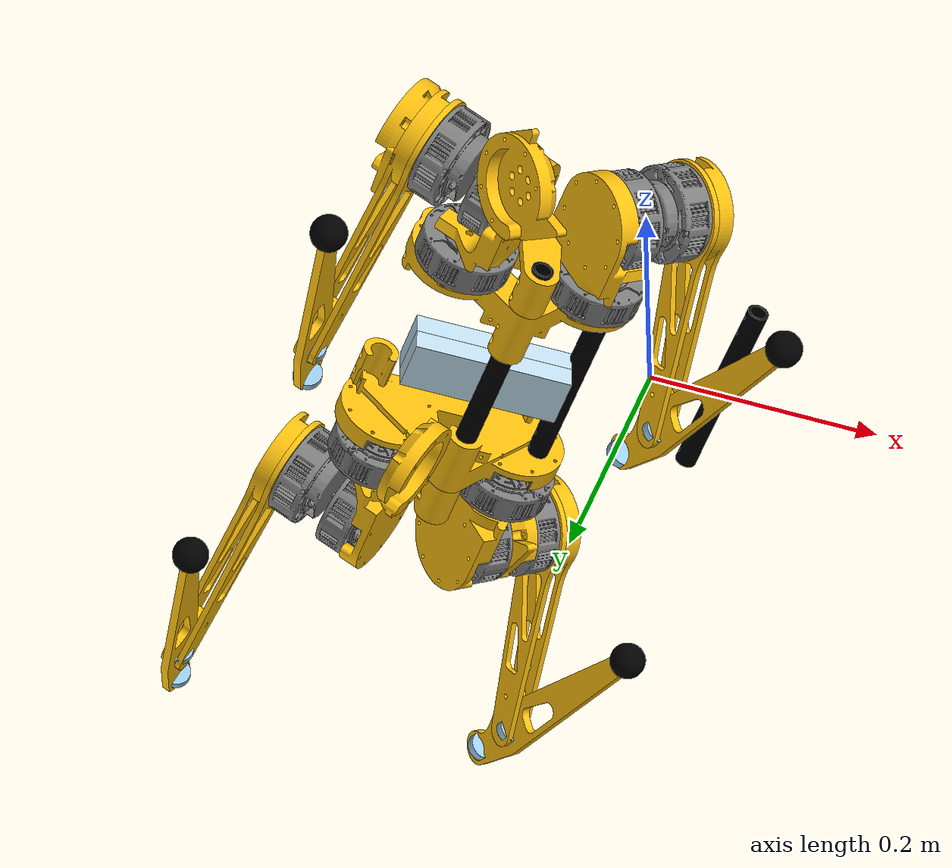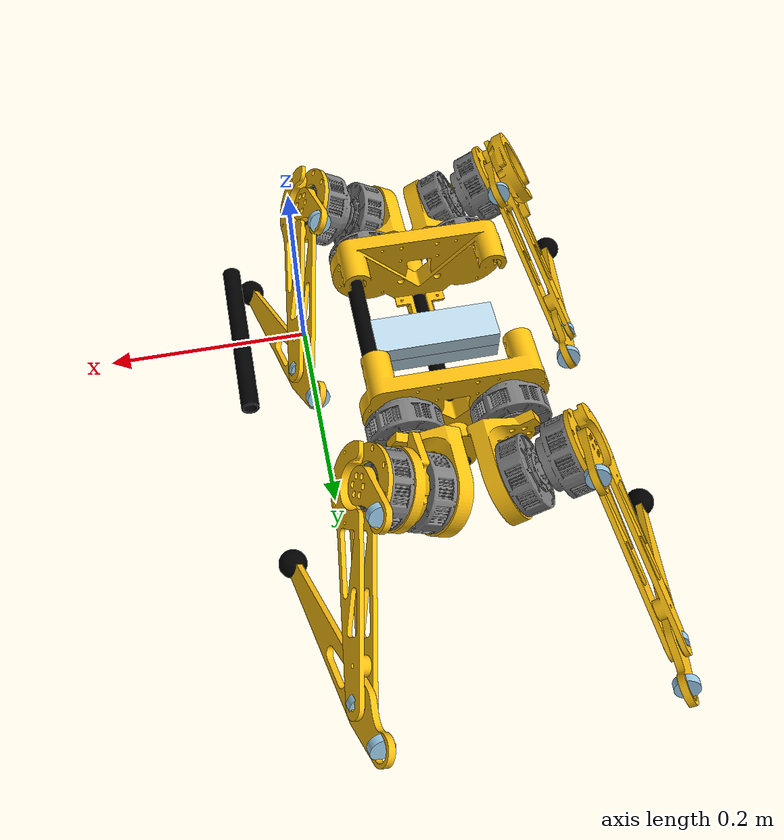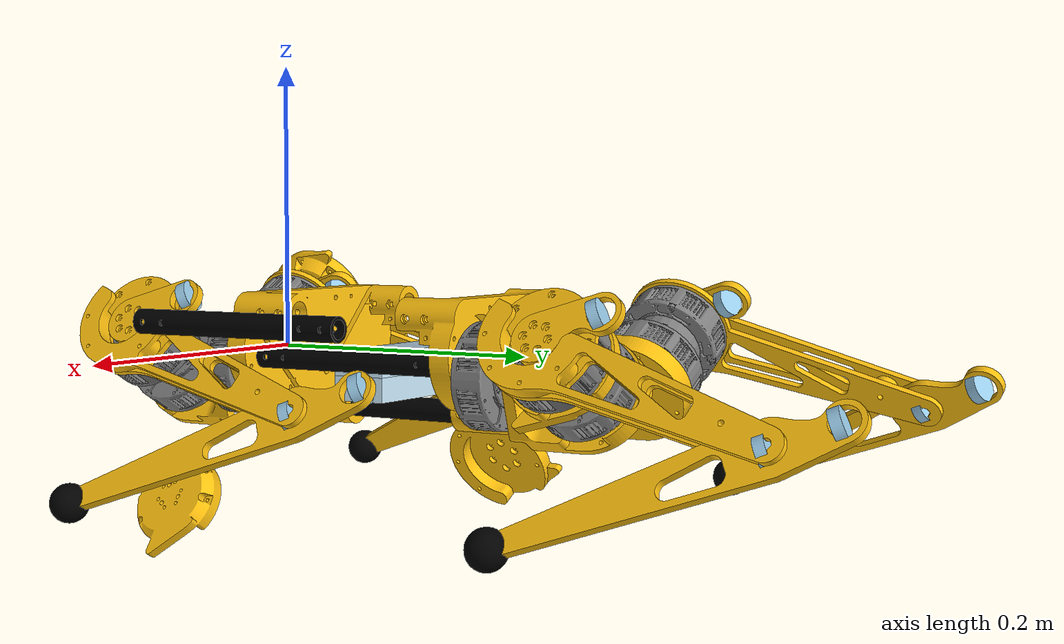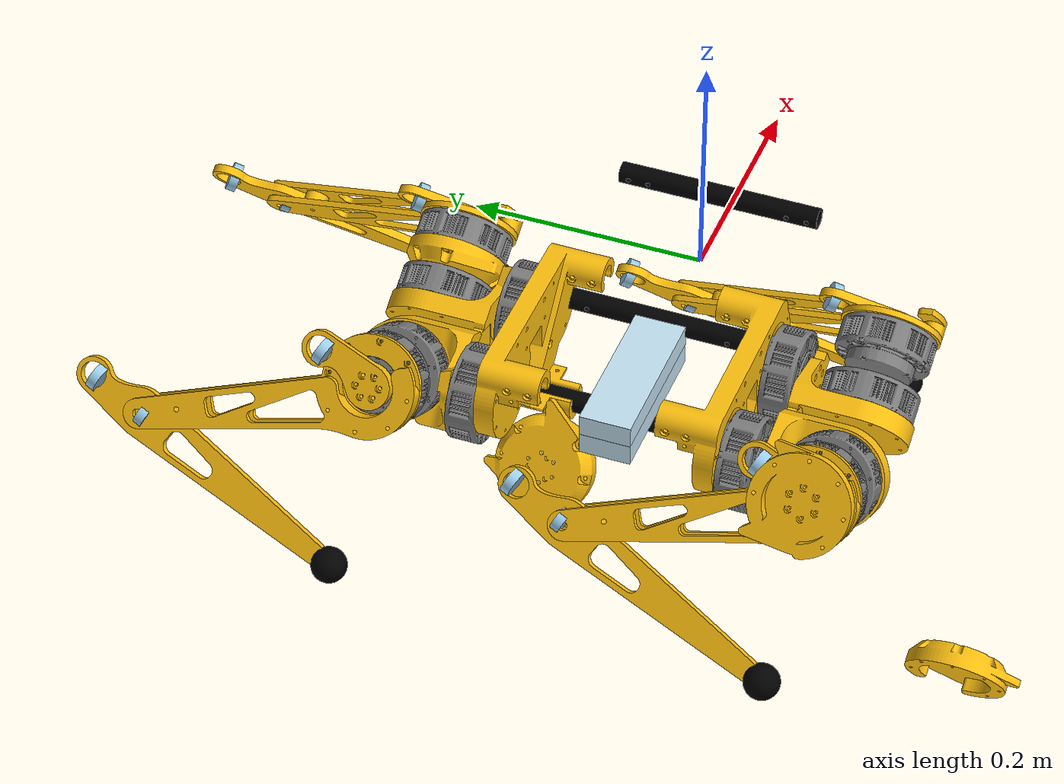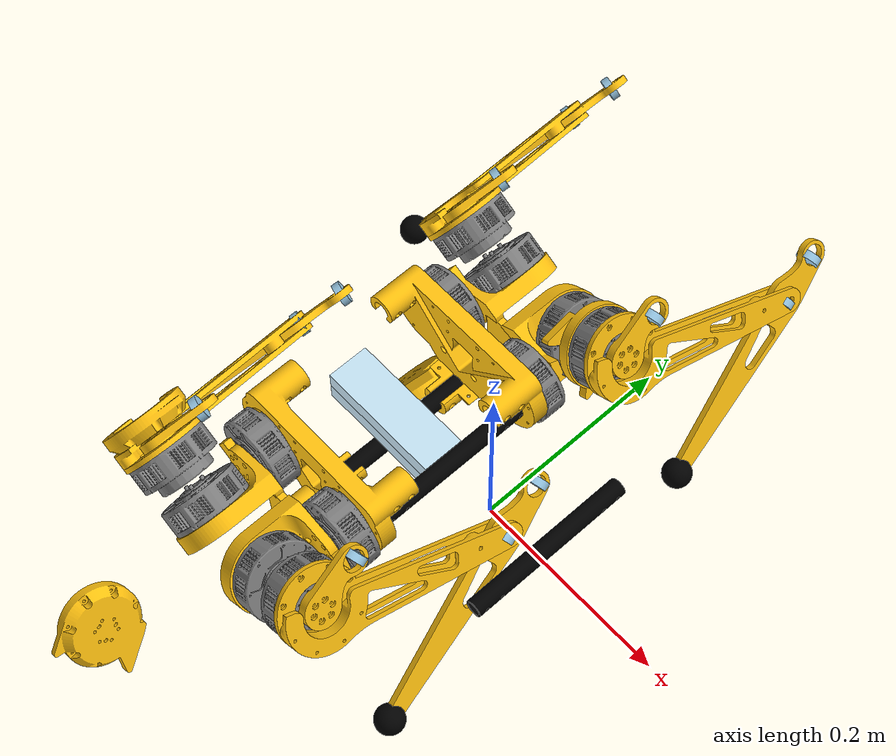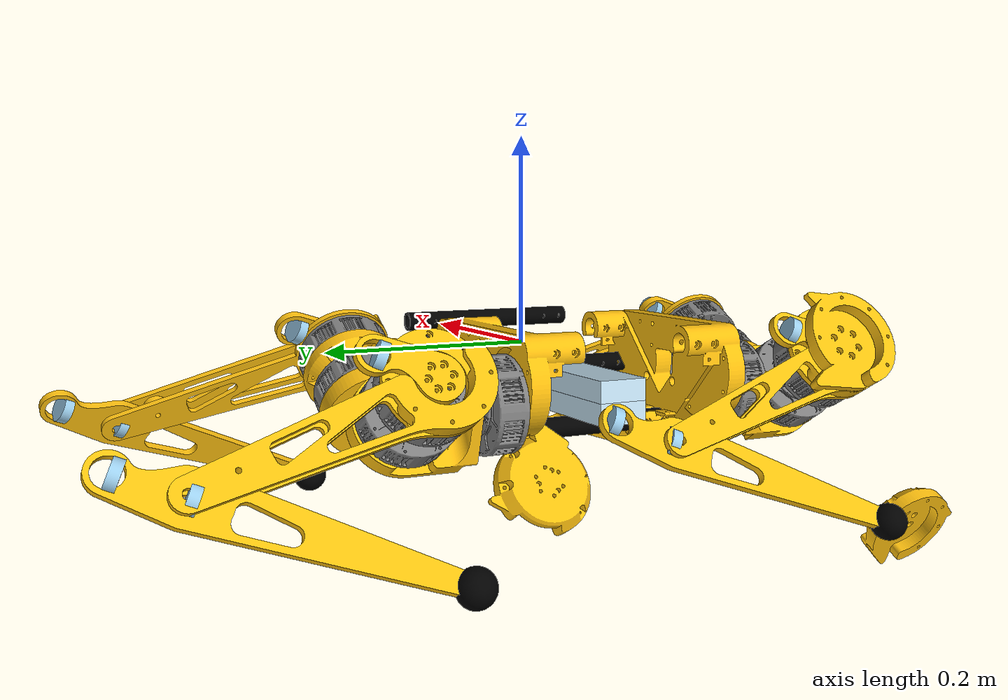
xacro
<?xml version="1.0" ?>
<!-- Generated using onshape-to-robot -->
<!-- Onshape https://cad.onshape.com/documents/ed1b080484db78e51ca91539/w/7397a458a49a8100160f52cd/e/9cc5d95f68bd237afce05dc0 -->
<robot name="robot" xmlns:xacro="http://www.ros.org/wiki/xacro">
<xacro:arg name="sim_mode" default="false"/>

<xacro:if value="$(arg sim_mode)">
  <xacro:include filename="$(find quadro)/description/robot.gazebo" />
</xacro:if>

<xacro:unless value="$(arg sim_mode)">
  <xacro:include filename="$(find quadro)/description/ros2_control.xacro" />
</xacro:unless>
  <!-- Link motor -->

  <link name="back_plate">
    <inertial>
      <origin xyz="-0.139034 0.00943483 -0.0243213" rpy="0 0 0"/>
      <mass value="2.38325"/>
      <inertia ixx="0.0204343" ixy="-3.21203e-05" ixz="6.24877e-20" iyy="0.00715196" iyz="-3.89899e-19" izz="0.0254162"/>
    </inertial>
    <!-- Part back_stop -->
    <visual>
      <origin xyz="-0.139034 -0.0331652 -0.058441" rpy="0 -0 0"/>
      <geometry>
        <mesh filename="file://$(find quadro)/description/assets/back_stop.stl"/>
      </geometry>
      <material name="back_stop_material">
        <color rgba="1 0.756863 0.054902 1"/>
      </material>
    </visual>
    <collision>
      <origin xyz="-0.139034 -0.0331652 -0.058441" rpy="0 -0 0"/>
      <geometry>
        <mesh filename="file://$(find quadro)/description/assets/back_stop.stl"/>
      </geometry>
    </collision>
    <!-- Part side_pipe -->
    <visual>
      <origin xyz="-0.0083688 0.0999348 -0.058441" rpy="0 -0 0"/>
      <geometry>
        <mesh filename="file://$(find quadro)/description/assets/side_pipe.stl"/>
      </geometry>
      <material name="side_pipe_material">
        <color rgba="0 0 0 1"/>
      </material>
    </visual>
    <collision>
      <origin xyz="-0.0083688 0.0999348 -0.058441" rpy="0 -0 0"/>
      <geometry>
        <mesh filename="file://$(find quadro)/description/assets/side_pipe.stl"/>
      </geometry>
    </collision>
    <!-- Part back_plate -->
    <visual>
      <origin xyz="-0.139034 0.0999348 -0.058441" rpy="0 -0 0"/>
      <geometry>
        <mesh filename="file://$(find quadro)/description/assets/back_plate.stl"/>
      </geometry>
      <material name="back_plate_material">
        <color rgba="1 0.756863 0.054902 1"/>
      </material>
    </visual>
    <collision>
      <origin xyz="-0.139034 0.0999348 -0.058441" rpy="0 -0 0"/>
      <geometry>
        <mesh filename="file://$(find quadro)/description/assets/back_plate.stl"/>
      </geometry>
    </collision>
    <!-- Part battery -->
    <visual>
      <origin xyz="-0.0725337 -0.0125652 -0.028441" rpy="0 -6.12323e-17 1.5708"/>
      <geometry>
        <mesh filename="file://$(find quadro)/description/assets/battery.stl"/>
      </geometry>
      <material name="battery_material">
        <color rgba="0.768627 0.886275 0.952941 1"/>
      </material>
    </visual>
    <collision>
      <origin xyz="-0.0725337 -0.0125652 -0.028441" rpy="0 -6.12323e-17 1.5708"/>
      <geometry>
        <mesh filename="file://$(find quadro)/description/assets/battery.stl"/>
      </geometry>
    </collision>
    <!-- Part motor -->
    <visual>
      <origin xyz="-0.194034 -0.0920652 -0.023441" rpy="3.14159 5.95406e-36 -1.5708"/>
      <geometry>
        <mesh filename="file://$(find quadro)/description/assets/motor.stl"/>
      </geometry>
      <material name="motor_material">
        <color rgba="0.498039 0.498039 0.498039 1"/>
      </material>
    </visual>
    <collision>
      <origin xyz="-0.194034 -0.0920652 -0.023441" rpy="3.14159 5.95406e-36 -1.5708"/>
      <geometry>
        <mesh filename="file://$(find quadro)/description/assets/motor.stl"/>
      </geometry>
    </collision>
    <!-- Part motor_2 -->
    <visual>
      <origin xyz="-0.194034 0.110935 -0.023441" rpy="3.14159 5.95406e-36 1.5708"/>
      <geometry>
        <mesh filename="file://$(find quadro)/description/assets/motor.stl"/>
      </geometry>
      <material name="motor_2_material">
        <color rgba="0.498039 0.498039 0.498039 1"/>
      </material>
    </visual>
    <collision>
      <origin xyz="-0.194034 0.110935 -0.023441" rpy="3.14159 5.95406e-36 1.5708"/>
      <geometry>
        <mesh filename="file://$(find quadro)/description/assets/motor.stl"/>
      </geometry>
    </collision>
    <!-- Part motor_3 -->
    <visual>
      <origin xyz="-0.0840337 -0.0920652 -0.023441" rpy="3.14159 5.95406e-36 -1.5708"/>
      <geometry>
        <mesh filename="file://$(find quadro)/description/assets/motor.stl"/>
      </geometry>
      <material name="motor_3_material">
        <color rgba="0.498039 0.498039 0.498039 1"/>
      </material>
    </visual>
    <collision>
      <origin xyz="-0.0840337 -0.0920652 -0.023441" rpy="3.14159 5.95406e-36 -1.5708"/>
      <geometry>
        <mesh filename="file://$(find quadro)/description/assets/motor.stl"/>
      </geometry>
    </collision>
    <!-- Part side_pipe_2 -->
    <visual>
      <origin xyz="-0.139034 -0.0810652 0.0614484" rpy="3.14159 -0 0"/>
      <geometry>
        <mesh filename="file://$(find quadro)/description/assets/side_pipe.stl"/>
      </geometry>
      <material name="side_pipe_2_material">
        <color rgba="0 0 0 1"/>
      </material>
    </visual>
    <collision>
      <origin xyz="-0.139034 -0.0810652 0.0614484" rpy="3.14159 -0 0"/>
      <geometry>
        <mesh filename="file://$(find quadro)/description/assets/side_pipe.stl"/>
      </geometry>
    </collision>
    <!-- Part motor_4 -->
    <visual>
      <origin xyz="-0.0840337 0.110935 -0.023441" rpy="3.14159 5.95406e-36 1.5708"/>
      <geometry>
        <mesh filename="file://$(find quadro)/description/assets/motor.stl"/>
      </geometry>
      <material name="motor_4_material">
        <color rgba="0.498039 0.498039 0.498039 1"/>
      </material>
    </visual>
    <collision>
      <origin xyz="-0.0840337 0.110935 -0.023441" rpy="3.14159 5.95406e-36 1.5708"/>
      <geometry>
        <mesh filename="file://$(find quadro)/description/assets/motor.stl"/>
      </geometry>
    </collision>
    <!-- Part back_stop_2 -->
    <visual>
      <origin xyz="-0.139034 0.0520348 -0.058441" rpy="0 -0 3.14159"/>
      <geometry>
        <mesh filename="file://$(find quadro)/description/assets/back_stop.stl"/>
      </geometry>
      <material name="back_stop_2_material">
        <color rgba="1 0.756863 0.054902 1"/>
      </material>
    </visual>
    <collision>
      <origin xyz="-0.139034 0.0520348 -0.058441" rpy="0 -0 3.14159"/>
      <geometry>
        <mesh filename="file://$(find quadro)/description/assets/back_stop.stl"/>
      </geometry>
    </collision>
    <!-- Part back_plate_2 -->
    <visual>
      <origin xyz="-0.139034 -0.0810652 -0.058441" rpy="0 -0 3.14159"/>
      <geometry>
        <mesh filename="file://$(find quadro)/description/assets/back_plate.stl"/>
      </geometry>
      <material name="back_plate_2_material">
        <color rgba="1 0.756863 0.054902 1"/>
      </material>
    </visual>
    <collision>
      <origin xyz="-0.139034 -0.0810652 -0.058441" rpy="0 -0 3.14159"/>
      <geometry>
        <mesh filename="file://$(find quadro)/description/assets/back_plate.stl"/>
      </geometry>
    </collision>
    <!-- Part main_pipe -->
    <visual>
      <origin xyz="-0.139034 -0.133065 -0.058441" rpy="0 -0 0"/>
      <geometry>
        <mesh filename="file://$(find quadro)/description/assets/main_pipe.stl"/>
      </geometry>
      <material name="main_pipe_material">
        <color rgba="0 0 0 1"/>
      </material>
    </visual>
    <collision>
      <origin xyz="-0.139034 -0.133065 -0.058441" rpy="0 -0 0"/>
      <geometry>
        <mesh filename="file://$(find quadro)/description/assets/main_pipe.stl"/>
      </geometry>
    </collision>
    <!-- Part battery_2 -->
    <visual>
      <origin xyz="-0.205534 -0.0125652 -0.028441" rpy="3.14159 -6.12323e-17 1.5708"/>
      <geometry>
        <mesh filename="file://$(find quadro)/description/assets/battery.stl"/>
      </geometry>
      <material name="battery_2_material">
        <color rgba="0.768627 0.886275 0.952941 1"/>
      </material>
    </visual>
    <collision>
      <origin xyz="-0.205534 -0.0125652 -0.028441" rpy="3.14159 -6.12323e-17 1.5708"/>
      <geometry>
        <mesh filename="file://$(find quadro)/description/assets/battery.stl"/>
      </geometry>
    </collision>
  </link>
  <!-- Link shaft -->
  <link name="shaft">
    <inertial>
      <origin xyz="-0.00743033 0.00365203 -0.0538481" rpy="0 0 0"/>
      <mass value="0.500834"/>
      <inertia ixx="0.000715416" ixy="-4.87254e-05" ixz="-3.36343e-05" iyy="0.000667976" iyz="1.74582e-05" izz="0.000280763"/>
    </inertial>
    <!-- Part lin_1_support_br -->
    <visual>
      <origin xyz="-0.0242487 0.014 -0.0735" rpy="1.0472 -1.5708 0"/>
      <geometry>
        <mesh filename="file://$(find quadro)/description/assets/lin_1_support_br.stl"/>
      </geometry>
      <material name="lin_1_support_br_material">
        <color rgba="1 0.756863 0.054902 1"/>
      </material>
    </visual>
    <collision>
      <origin xyz="-0.0242487 0.014 -0.0735" rpy="1.0472 -1.5708 0"/>
      <geometry>
        <mesh filename="file://$(find quadro)/description/assets/lin_1_support_br.stl"/>
      </geometry>
    </collision>
    <!-- Part motor_5 -->
    <visual>
      <origin xyz="-0.0147224 0.0085 -0.0735" rpy="-1.5708 6.61824e-17 -0.523599"/>
      <geometry>
        <mesh filename="file://$(find quadro)/description/assets/motor.stl"/>
      </geometry>
      <material name="motor_5_material">
        <color rgba="0.498039 0.498039 0.498039 1"/>
      </material>
    </visual>
    <collision>
      <origin xyz="-0.0147224 0.0085 -0.0735" rpy="-1.5708 6.61824e-17 -0.523599"/>
      <geometry>
        <mesh filename="file://$(find quadro)/description/assets/motor.stl"/>
      </geometry>
    </collision>
    <!-- Part shaft -->
    <visual>
      <origin xyz="0 0 0.01" rpy="1.5708 1.5708 0"/>
      <geometry>
        <mesh filename="file://$(find quadro)/description/assets/shaft.stl"/>
      </geometry>
      <material name="shaft_material">
        <color rgba="0.498039 0.498039 0.498039 1"/>
      </material>
    </visual>
    <collision>
      <origin xyz="0 0 0.01" rpy="1.5708 1.5708 0"/>
      <geometry>
        <mesh filename="file://$(find quadro)/description/assets/shaft.stl"/>
      </geometry>
    </collision>
  </link>
  <!-- Link shaft_2 -->
  <link name="shaft_2">
    <inertial>
      <origin xyz="0.0106548 -0.00501565 -0.0435875" rpy="0 0 0"/>
      <mass value="0.551476"/>
      <inertia ixx="0.000599797" ixy="0.000304448" ixz="0.000186335" iyy="0.00130385" iyz="-9.91623e-05" izz="0.00132343"/>
    </inertial>
    <!-- Part lin_3_bot_r -->
    <visual>
      <origin xyz="2.77556e-17 8.04912e-16 -0.0645" rpy="1.5708 -3.60822e-16 2.79253"/>
      <geometry>
        <mesh filename="file://$(find quadro)/description/assets/lin_3_bot_r.stl"/>
      </geometry>
      <material name="lin_3_bot_r_material">
        <color rgba="1 0.756863 0.054902 1"/>
      </material>
    </visual>
    <collision>
      <origin xyz="2.77556e-17 8.04912e-16 -0.0645" rpy="1.5708 -3.60822e-16 2.79253"/>
      <geometry>
        <mesh filename="file://$(find quadro)/description/assets/lin_3_bot_r.stl"/>
      </geometry>
    </collision>
    <!-- Part lin_3_top_r -->
    <visual>
      <origin xyz="2.77556e-17 8.04912e-16 -0.0645" rpy="1.5708 -2.77556e-16 2.79253"/>
      <geometry>
        <mesh filename="file://$(find quadro)/description/assets/lin_3_top_r.stl"/>
      </geometry>
      <material name="lin_3_top_r_material">
        <color rgba="1 0.756863 0.054902 1"/>
      </material>
    </visual>
    <collision>
      <origin xyz="2.77556e-17 8.04912e-16 -0.0645" rpy="1.5708 -2.77556e-16 2.79253"/>
      <geometry>
        <mesh filename="file://$(find quadro)/description/assets/lin_3_top_r.stl"/>
      </geometry>
    </collision>
    <!-- Part shaft_2 -->
    <visual>
      <origin xyz="-2.77556e-17 -1.38778e-17 0.01" rpy="1.5708 1.5708 0"/>
      <geometry>
        <mesh filename="file://$(find quadro)/description/assets/shaft.stl"/>
      </geometry>
      <material name="shaft_2_material">
        <color rgba="0.498039 0.498039 0.498039 1"/>
      </material>
    </visual>
    <collision>
      <origin xyz="-2.77556e-17 -1.38778e-17 0.01" rpy="1.5708 1.5708 0"/>
      <geometry>
        <mesh filename="file://$(find quadro)/description/assets/shaft.stl"/>
      </geometry>
    </collision>
    <!-- Part lin_2_br -->
    <visual>
      <origin xyz="-0.123802 -0.0577297 -0.0195" rpy="1.5708 2.77556e-17 -2.70526"/>
      <geometry>
        <mesh filename="file://$(find quadro)/description/assets/lin_2_br.stl"/>
      </geometry>
      <material name="lin_2_br_material">
        <color rgba="1 0.756863 0.054902 1"/>
      </material>
    </visual>
    <collision>
      <origin xyz="-0.123802 -0.0577297 -0.0195" rpy="1.5708 2.77556e-17 -2.70526"/>
      <geometry>
        <mesh filename="file://$(find quadro)/description/assets/lin_2_br.stl"/>
      </geometry>
    </collision>
    <!-- Part motor_6 -->
    <visual>
      <origin xyz="2.77556e-17 8.04912e-16 -0.0385" rpy="1.13446 1.5708 0"/>
      <geometry>
        <mesh filename="file://$(find quadro)/description/assets/motor.stl"/>
      </geometry>
      <material name="motor_6_material">
        <color rgba="0.498039 0.498039 0.498039 1"/>
      </material>
    </visual>
    <collision>
      <origin xyz="2.77556e-17 8.04912e-16 -0.0385" rpy="1.13446 1.5708 0"/>
      <geometry>
        <mesh filename="file://$(find quadro)/description/assets/motor.stl"/>
      </geometry>
    </collision>
  </link>
  <!-- Link shaft_3 -->
  <link name="shaft_3">
    <inertial>
      <origin xyz="0.00299793 0.00329395 -0.0125923" rpy="0 0 0"/>
      <mass value="0.140118"/>
      <inertia ixx="3.25345e-05" ixy="-1.26752e-05" ixz="5.42207e-06" iyy="3.12409e-05" iyz="5.95746e-06" izz="4.62705e-05"/>
    </inertial>
    <!-- Part bearing -->
    <visual>
      <origin xyz="0.0353553 0.0353553 -0.0255" rpy="3.14159 -4.88498e-15 2.35619"/>
      <geometry>
        <mesh filename="file://$(find quadro)/description/assets/bearing.stl"/>
      </geometry>
      <material name="bearing_material">
        <color rgba="0.615686 0.811765 0.929412 1"/>
      </material>
    </visual>
    <collision>
      <origin xyz="0.0353553 0.0353553 -0.0255" rpy="3.14159 -4.88498e-15 2.35619"/>
      <geometry>
        <mesh filename="file://$(find quadro)/description/assets/bearing.stl"/>
      </geometry>
    </collision>
    <!-- Part shaft_3 -->
    <visual>
      <origin xyz="-2.77556e-17 -2.77556e-17 0.01" rpy="1.5708 1.5708 0"/>
      <geometry>
        <mesh filename="file://$(find quadro)/description/assets/shaft.stl"/>
      </geometry>
      <material name="shaft_3_material">
        <color rgba="0.498039 0.498039 0.498039 1"/>
      </material>
    </visual>
    <collision>
      <origin xyz="-2.77556e-17 -2.77556e-17 0.01" rpy="1.5708 1.5708 0"/>
      <geometry>
        <mesh filename="file://$(find quadro)/description/assets/shaft.stl"/>
      </geometry>
    </collision>
    <!-- Part lin_top_r -->
    <visual>
      <origin xyz="0 0 0.003" rpy="1.5708 -4.88498e-15 2.35619"/>
      <geometry>
        <mesh filename="file://$(find quadro)/description/assets/lin_top_r.stl"/>
      </geometry>
      <material name="lin_top_r_material">
        <color rgba="1 0.756863 0.054902 1"/>
      </material>
    </visual>
    <collision>
      <origin xyz="0 0 0.003" rpy="1.5708 -4.88498e-15 2.35619"/>
      <geometry>
        <mesh filename="file://$(find quadro)/description/assets/lin_top_r.stl"/>
      </geometry>
    </collision>
  </link>
  <!-- Joint from shaft_2 to shaft_3 -->
  <joint name="br_m3_s3" type="revolute">
    <origin xyz="2.77556e-17 8.04912e-16 -0.0485" rpy="6.66134e-16 8.32667e-17 -0.349066"/>
    <parent link="shaft_2"/>
    <child link="shaft_3"/>
    <axis xyz="0 0 1"/>
    <limit effort="10" velocity="12" lower="-3.14" upper="3.14"/>
    <joint_properties friction="0.5"/>
    <mimic joint="br_l4_l3" multiplier="1.0"/>
  </joint>
  <!-- Link lin_4_r -->
  <link name="lin_4_r">
    <inertial>
      <origin xyz="-0.000162389 0.0733841 -0.0035" rpy="0 0 0"/>
      <mass value="0.0813924"/>
      <inertia ixx="0.000647132" ixy="-2.74301e-06" ixz="-2.68991e-13" iyy="7.272e-06" iyz="2.78217e-12" izz="0.000652467"/>
    </inertial>
    <!-- Part lin_4_r -->
    <visual>
      <origin xyz="0.2 0 0.005" rpy="1.5708 5.55112e-17 5.55112e-17"/>
      <geometry>
        <mesh filename="file://$(find quadro)/description/assets/lin_4_r.stl"/>
      </geometry>
      <material name="lin_4_r_material">
        <color rgba="1 0.756863 0.054902 1"/>
      </material>
    </visual>
    <collision>
      <origin xyz="0.2 0 0.005" rpy="1.5708 5.55112e-17 5.55112e-17"/>
      <geometry>
        <mesh filename="file://$(find quadro)/description/assets/lin_4_r.stl"/>
      </geometry>
    </collision>
    <!-- Part feet -->
    <visual>
      <origin xyz="0.2 5.55112e-17 0.0315" rpy="1.5708 5.55112e-17 5.55112e-17"/>
      <geometry>
        <mesh filename="file://$(find quadro)/description/assets/feet.stl"/>
      </geometry>
      <material name="feet_material">
        <color rgba="0 0 0 1"/>
      </material>
    </visual>
    <collision>
      <origin xyz="0.2 5.55112e-17 0.0315" rpy="1.5708 5.55112e-17 5.55112e-17"/>
      <geometry>
        <mesh filename="file://$(find quadro)/description/assets/feet.stl"/>
      </geometry>
    </collision>
    <!-- Part bearing_2 -->
    <visual>
      <origin xyz="1.11022e-16 -0.05 -0.0035" rpy="3.14159 5.55112e-17 5.55112e-17"/>
      <geometry>
        <mesh filename="file://$(find quadro)/description/assets/bearing.stl"/>
      </geometry>
      <material name="bearing_2_material">
        <color rgba="0.615686 0.811765 0.929412 1"/>
      </material>
    </visual>
    <collision>
      <origin xyz="1.11022e-16 -0.05 -0.0035" rpy="3.14159 5.55112e-17 5.55112e-17"/>
      <geometry>
        <mesh filename="file://$(find quadro)/description/assets/bearing.stl"/>
      </geometry>
    </collision>
    <!-- Part bearing_3 -->
    <visual>
      <origin xyz="5.55112e-17 -5.55112e-17 -0.0035" rpy="3.14159 5.55112e-17 5.55112e-17"/>
      <geometry>
        <mesh filename="file://$(find quadro)/description/assets/bearing.stl"/>
      </geometry>
      <material name="bearing_3_material">
        <color rgba="0.615686 0.811765 0.929412 1"/>
      </material>
    </visual>
    <collision>
      <origin xyz="5.55112e-17 -5.55112e-17 -0.0035" rpy="3.14159 5.55112e-17 5.55112e-17"/>
      <geometry>
        <mesh filename="file://$(find quadro)/description/assets/bearing.stl"/>
      </geometry>
    </collision>
  </link>
  <!-- Joint from shaft_2 to lin_4_r -->
  <joint name="br_l4_l3" type="revolute">
    <origin xyz="0.187939 -0.068404 -0.0705" rpy="1.85962e-15 3.88578e-16 2.00713"/>
    <parent link="shaft_2"/>
    <child link="lin_4_r"/>
    <axis xyz="0 0 1"/>
    <limit effort="10" velocity="12" lower="-3.14" upper="3.14"/>
    <joint_properties friction="0.5"/>
  </joint>
  <!-- Joint from shaft to shaft_2 -->
  <joint name="br_m2_s2" type="revolute">
    <origin xyz="-0.00606218 0.0035 -0.0735" rpy="-2.61799 1.5708 0"/>
    <parent link="shaft"/>
    <child link="shaft_2"/>
    <axis xyz="0 0 1"/>
    <limit effort="10" velocity="12" lower="-3.14" upper="3.14"/>
    <joint_properties friction="0.5"/>
  </joint>
  <!-- Joint from back_plate to shaft -->
  <joint name="br_m1_s1" type="revolute">
    <origin xyz="-0.194034 0.120935 -0.023441" rpy="-1.5708 -5.95406e-36 -3.14159"/>
    <parent link="back_plate"/>
    <child link="shaft"/>
    <axis xyz="0 0 1"/>
    <limit effort="10" velocity="12" lower="-3.14" upper="3.14"/>
    <joint_properties friction="0.5"/>
  </joint>
  <!-- Link shaft_4 -->
  <link name="shaft_4">
    <inertial>
      <origin xyz="0.00743033 0.00365203 -0.0535667" rpy="0 0 0"/>
      <mass value="0.500834"/>
      <inertia ixx="0.000709837" ixy="4.87254e-05" ixz="3.40867e-05" iyy="0.000662397" iyz="1.77194e-05" izz="0.000280763"/>
    </inertial>
    <!-- Part shaft_4 -->
    <visual>
      <origin xyz="0 0 0.01" rpy="1.5708 1.5708 0"/>
      <geometry>
        <mesh filename="file://$(find quadro)/description/assets/shaft.stl"/>
      </geometry>
      <material name="shaft_4_material">
        <color rgba="0.498039 0.498039 0.498039 1"/>
      </material>
    </visual>
    <collision>
      <origin xyz="0 0 0.01" rpy="1.5708 1.5708 0"/>
      <geometry>
        <mesh filename="file://$(find quadro)/description/assets/shaft.stl"/>
      </geometry>
    </collision>
    <!-- Part motor_7 -->
    <visual>
      <origin xyz="0.0147224 0.0085 -0.0735" rpy="1.5708 -2.9934e-16 -2.61799"/>
      <geometry>
        <mesh filename="file://$(find quadro)/description/assets/motor.stl"/>
      </geometry>
      <material name="motor_7_material">
        <color rgba="0.498039 0.498039 0.498039 1"/>
      </material>
    </visual>
    <collision>
      <origin xyz="0.0147224 0.0085 -0.0735" rpy="1.5708 -2.9934e-16 -2.61799"/>
      <geometry>
        <mesh filename="file://$(find quadro)/description/assets/motor.stl"/>
      </geometry>
    </collision>
    <!-- Part lin_1_support_bl -->
    <visual>
      <origin xyz="0.0840045 0.0485 -0.0735" rpy="2.0944 -1.5708 0"/>
      <geometry>
        <mesh filename="file://$(find quadro)/description/assets/lin_1_support_bl.stl"/>
      </geometry>
      <material name="lin_1_support_bl_material">
        <color rgba="1 0.756863 0.054902 1"/>
      </material>
    </visual>
    <collision>
      <origin xyz="0.0840045 0.0485 -0.0735" rpy="2.0944 -1.5708 0"/>
      <geometry>
        <mesh filename="file://$(find quadro)/description/assets/lin_1_support_bl.stl"/>
      </geometry>
    </collision>
  </link>
  <!-- Link shaft_5 -->
  <link name="shaft_5">
    <inertial>
      <origin xyz="0.00646492 0.00964883 -0.0435875" rpy="0 0 0"/>
      <mass value="0.551476"/>
      <inertia ixx="0.00103972" ixy="-0.000458604" ixz="0.000110756" iyy="0.000866019" iyz="0.000178954" izz="0.00132552"/>
    </inertial>
    <!-- Part lin_2_bl -->
    <visual>
      <origin xyz="2.77556e-17 1.38778e-17 -0.0195" rpy="1.5708 5.55112e-17 0.0872665"/>
      <geometry>
        <mesh filename="file://$(find quadro)/description/assets/lin_2_bl.stl"/>
      </geometry>
      <material name="lin_2_bl_material">
        <color rgba="1 0.756863 0.054902 1"/>
      </material>
    </visual>
    <collision>
      <origin xyz="2.77556e-17 1.38778e-17 -0.0195" rpy="1.5708 5.55112e-17 0.0872665"/>
      <geometry>
        <mesh filename="file://$(find quadro)/description/assets/lin_2_bl.stl"/>
      </geometry>
    </collision>
    <!-- Part lin_3_top_l -->
    <visual>
      <origin xyz="-1.66533e-16 -8.18789e-16 0.087" rpy="-1.5708 4.02456e-15 -2.26893"/>
      <geometry>
        <mesh filename="file://$(find quadro)/description/assets/lin_3_top_l.stl"/>
      </geometry>
      <material name="lin_3_top_l_material">
        <color rgba="1 0.756863 0.054902 1"/>
      </material>
    </visual>
    <collision>
      <origin xyz="-1.66533e-16 -8.18789e-16 0.087" rpy="-1.5708 4.02456e-15 -2.26893"/>
      <geometry>
        <mesh filename="file://$(find quadro)/description/assets/lin_3_top_l.stl"/>
      </geometry>
    </collision>
    <!-- Part motor_8 -->
    <visual>
      <origin xyz="4.71845e-16 -7.35523e-16 -0.0385" rpy="-1.65806 1.5708 0"/>
      <geometry>
        <mesh filename="file://$(find quadro)/description/assets/motor.stl"/>
      </geometry>
      <material name="motor_8_material">
        <color rgba="0.498039 0.498039 0.498039 1"/>
      </material>
    </visual>
    <collision>
      <origin xyz="4.71845e-16 -7.35523e-16 -0.0385" rpy="-1.65806 1.5708 0"/>
      <geometry>
        <mesh filename="file://$(find quadro)/description/assets/motor.stl"/>
      </geometry>
    </collision>
    <!-- Part lin_3_bot_l -->
    <visual>
      <origin xyz="3.05311e-16 -2.63678e-16 0.087" rpy="-1.5708 3.9968e-15 -2.26893"/>
      <geometry>
        <mesh filename="file://$(find quadro)/description/assets/lin_3_bot_l.stl"/>
      </geometry>
      <material name="lin_3_bot_l_material">
        <color rgba="1 0.756863 0.054902 1"/>
      </material>
    </visual>
    <collision>
      <origin xyz="3.05311e-16 -2.63678e-16 0.087" rpy="-1.5708 3.9968e-15 -2.26893"/>
      <geometry>
        <mesh filename="file://$(find quadro)/description/assets/lin_3_bot_l.stl"/>
      </geometry>
    </collision>
    <!-- Part shaft_5 -->
    <visual>
      <origin xyz="0 1.38778e-17 0.01" rpy="1.5708 1.5708 0"/>
      <geometry>
        <mesh filename="file://$(find quadro)/description/assets/shaft.stl"/>
      </geometry>
      <material name="shaft_5_material">
        <color rgba="0.498039 0.498039 0.498039 1"/>
      </material>
    </visual>
    <collision>
      <origin xyz="0 1.38778e-17 0.01" rpy="1.5708 1.5708 0"/>
      <geometry>
        <mesh filename="file://$(find quadro)/description/assets/shaft.stl"/>
      </geometry>
    </collision>
  </link>
  <!-- Link shaft_6 -->
  <link name="shaft_6">
    <inertial>
      <origin xyz="-0.00299792 0.00329395 -0.0125923" rpy="0 0 0"/>
      <mass value="0.140118"/>
      <inertia ixx="3.25345e-05" ixy="1.26751e-05" ixz="-5.42205e-06" iyy="3.12408e-05" iyz="5.95745e-06" izz="4.62705e-05"/>
    </inertial>
    <!-- Part bearing_4 -->
    <visual>
      <origin xyz="-0.0353553 0.0353553 -0.0255" rpy="3.05311e-15 5.55112e-17 0.785398"/>
      <geometry>
        <mesh filename="file://$(find quadro)/description/assets/bearing.stl"/>
      </geometry>
      <material name="bearing_4_material">
        <color rgba="0.615686 0.811765 0.929412 1"/>
      </material>
    </visual>
    <collision>
      <origin xyz="-0.0353553 0.0353553 -0.0255" rpy="3.05311e-15 5.55112e-17 0.785398"/>
      <geometry>
        <mesh filename="file://$(find quadro)/description/assets/bearing.stl"/>
      </geometry>
    </collision>
    <!-- Part shaft_6 -->
    <visual>
      <origin xyz="0 0 0.01" rpy="1.5708 1.5708 0"/>
      <geometry>
        <mesh filename="file://$(find quadro)/description/assets/shaft.stl"/>
      </geometry>
      <material name="shaft_6_material">
        <color rgba="0.498039 0.498039 0.498039 1"/>
      </material>
    </visual>
    <collision>
      <origin xyz="0 0 0.01" rpy="1.5708 1.5708 0"/>
      <geometry>
        <mesh filename="file://$(find quadro)/description/assets/shaft.stl"/>
      </geometry>
    </collision>
    <!-- Part lin_top_l -->
    <visual>
      <origin xyz="-6.66134e-16 -6.10623e-16 0.1545" rpy="-1.5708 1.66533e-16 0.785398"/>
      <geometry>
        <mesh filename="file://$(find quadro)/description/assets/lin_top_l.stl"/>
      </geometry>
      <material name="lin_top_l_material">
        <color rgba="1 0.756863 0.054902 1"/>
      </material>
    </visual>
    <collision>
      <origin xyz="-6.66134e-16 -6.10623e-16 0.1545" rpy="-1.5708 1.66533e-16 0.785398"/>
      <geometry>
        <mesh filename="file://$(find quadro)/description/assets/lin_top_l.stl"/>
      </geometry>
    </collision>
  </link>
  <!-- Joint from shaft_5 to shaft_6 -->
  <joint name="bl_m3_s3" type="revolute">
    <origin xyz="3.05311e-16 -1.38778e-17 -0.0485" rpy="2.60902e-15 3.66374e-15 -2.26893"/>
    <parent link="shaft_5"/>
    <child link="shaft_6"/>
    <axis xyz="0 0 1"/>
    <limit effort="10" velocity="12" lower="-3.14" upper="3.14"/>
    <joint_properties friction="0.5"/>
    <mimic joint="bl_l4_l3" multiplier="1.0"/>
  </joint>
  <!-- Link lin_4_l -->
  <link name="lin_4_l">
    <inertial>
      <origin xyz="-0.000162393 -0.0733841 -0.0035" rpy="0 0 0"/>
      <mass value="0.0813924"/>
      <inertia ixx="0.000647132" ixy="2.74304e-06" ixz="2.68991e-13" iyy="7.272e-06" iyz="2.78217e-12" izz="0.000652466"/>
    </inertial>
    <!-- Part bearing_5 -->
    <visual>
      <origin xyz="-1.11022e-16 -5.55112e-17 -0.0035" rpy="5.4956e-15 5.55112e-17 5.55112e-17"/>
      <geometry>
        <mesh filename="file://$(find quadro)/description/assets/bearing.stl"/>
      </geometry>
      <material name="bearing_5_material">
        <color rgba="0.615686 0.811765 0.929412 1"/>
      </material>
    </visual>
    <collision>
      <origin xyz="-1.11022e-16 -5.55112e-17 -0.0035" rpy="5.4956e-15 5.55112e-17 5.55112e-17"/>
      <geometry>
        <mesh filename="file://$(find quadro)/description/assets/bearing.stl"/>
      </geometry>
    </collision>
    <!-- Part bearing_6 -->
    <visual>
      <origin xyz="-1.38778e-16 0.05 -0.0035" rpy="5.4956e-15 5.55112e-17 5.55112e-17"/>
      <geometry>
        <mesh filename="file://$(find quadro)/description/assets/bearing.stl"/>
      </geometry>
      <material name="bearing_6_material">
        <color rgba="0.615686 0.811765 0.929412 1"/>
      </material>
    </visual>
    <collision>
      <origin xyz="-1.38778e-16 0.05 -0.0035" rpy="5.4956e-15 5.55112e-17 5.55112e-17"/>
      <geometry>
        <mesh filename="file://$(find quadro)/description/assets/bearing.stl"/>
      </geometry>
    </collision>
    <!-- Part feet_2 -->
    <visual>
      <origin xyz="-0.2 -5.55112e-17 0.0315" rpy="1.5708 -5.55112e-17 3.14159"/>
      <geometry>
        <mesh filename="file://$(find quadro)/description/assets/feet.stl"/>
      </geometry>
      <material name="feet_2_material">
        <color rgba="0 0 0 1"/>
      </material>
    </visual>
    <collision>
      <origin xyz="-0.2 -5.55112e-17 0.0315" rpy="1.5708 -5.55112e-17 3.14159"/>
      <geometry>
        <mesh filename="file://$(find quadro)/description/assets/feet.stl"/>
      </geometry>
    </collision>
    <!-- Part lin_4_l -->
    <visual>
      <origin xyz="0.2 0 0.1565" rpy="-1.5708 5.55112e-17 -5.55112e-17"/>
      <geometry>
        <mesh filename="file://$(find quadro)/description/assets/lin_4_l.stl"/>
      </geometry>
      <material name="lin_4_l_material">
        <color rgba="1 0.756863 0.054902 1"/>
      </material>
    </visual>
    <collision>
      <origin xyz="0.2 0 0.1565" rpy="-1.5708 5.55112e-17 -5.55112e-17"/>
      <geometry>
        <mesh filename="file://$(find quadro)/description/assets/lin_4_l.stl"/>
      </geometry>
    </collision>
  </link>
  <!-- Joint from shaft_5 to lin_4_l -->
  <joint name="bl_l4_l3" type="revolute">
    <origin xyz="0.128558 0.153209 -0.0705" rpy="1.41553e-15 -2.55351e-15 -1.48353"/>
    <parent link="shaft_5"/>
    <child link="lin_4_l"/>
    <axis xyz="0 0 1"/>
    <limit effort="10" velocity="12" lower="-3.14" upper="3.14"/>
    <joint_properties friction="0.5"/>
  </joint>
  <!-- Joint from shaft_4 to shaft_5 -->
  <joint name="bl_m2_s2" type="revolute">
    <origin xyz="0.00606218 0.0035 -0.0735" rpy="-1.5708 1.0472 -1.0472"/>
    <parent link="shaft_4"/>
    <child link="shaft_5"/>
    <axis xyz="0 0 1"/>
    <limit effort="10" velocity="12" lower="-3.14" upper="3.14"/>
    <joint_properties friction="0.5"/>
  </joint>
  <!-- Joint from back_plate to shaft_4 -->
  <joint name="bl_m1_s1" type="revolute">
    <origin xyz="-0.0840337 0.120935 -0.023441" rpy="-1.5708 -5.95406e-36 -3.14159"/>
    <parent link="back_plate"/>
    <child link="shaft_4"/>
    <axis xyz="0 0 1"/>
    <limit effort="10" velocity="12" lower="-3.14" upper="3.14"/>
    <joint_properties friction="0.5"/>
  </joint>
  <!-- Link shaft_7 -->
  <link name="shaft_7">
    <inertial>
      <origin xyz="-0.00738234 -0.00373514 -0.0535667" rpy="0 0 0"/>
      <mass value="0.500834"/>
      <inertia ixx="0.000708695" ixy="4.94266e-05" ixz="-3.48065e-05" iyy="0.000663587" iyz="-1.64726e-05" izz="0.000280811"/>
    </inertial>
    <!-- Part lin_1_support_fr -->
    <visual>
      <origin xyz="-0.133888 -0.0773 -0.0735" rpy="2.0944 -1.5708 0"/>
      <geometry>
        <mesh filename="file://$(find quadro)/description/assets/lin_1_support_fr.stl"/>
      </geometry>
      <material name="lin_1_support_fr_material">
        <color rgba="1 0.756863 0.054902 1"/>
      </material>
    </visual>
    <collision>
      <origin xyz="-0.133888 -0.0773 -0.0735" rpy="2.0944 -1.5708 0"/>
      <geometry>
        <mesh filename="file://$(find quadro)/description/assets/lin_1_support_fr.stl"/>
      </geometry>
    </collision>
    <!-- Part motor_9 -->
    <visual>
      <origin xyz="-0.0147224 -0.0085 -0.0735" rpy="1.5708 -1.67792e-15 0.523599"/>
      <geometry>
        <mesh filename="file://$(find quadro)/description/assets/motor.stl"/>
      </geometry>
      <material name="motor_9_material">
        <color rgba="0.498039 0.498039 0.498039 1"/>
      </material>
    </visual>
    <collision>
      <origin xyz="-0.0147224 -0.0085 -0.0735" rpy="1.5708 -1.67792e-15 0.523599"/>
      <geometry>
        <mesh filename="file://$(find quadro)/description/assets/motor.stl"/>
      </geometry>
    </collision>
    <!-- Part shaft_7 -->
    <visual>
      <origin xyz="0 0 0.01" rpy="1.5708 1.5708 0"/>
      <geometry>
        <mesh filename="file://$(find quadro)/description/assets/shaft.stl"/>
      </geometry>
      <material name="shaft_7_material">
        <color rgba="0.498039 0.498039 0.498039 1"/>
      </material>
    </visual>
    <collision>
      <origin xyz="0 0 0.01" rpy="1.5708 1.5708 0"/>
      <geometry>
        <mesh filename="file://$(find quadro)/description/assets/shaft.stl"/>
      </geometry>
    </collision>
  </link>
  <!-- Link shaft_8 -->
  <link name="shaft_8">
    <inertial>
      <origin xyz="0.0110758 -0.00536086 -0.0435639" rpy="0 0 0"/>
      <mass value="0.55218"/>
      <inertia ixx="0.000598933" ixy="0.000301365" ixz="0.000181665" iyy="0.00129908" iyz="-9.53153e-05" izz="0.00131731"/>
    </inertial>
    <!-- Part lin_2_fr -->
    <visual>
      <origin xyz="0 5.55112e-17 0.0692" rpy="-1.5708 -2.22045e-16 0.436332"/>
      <geometry>
        <mesh filename="file://$(find quadro)/description/assets/lin_2_fr.stl"/>
      </geometry>
      <material name="lin_2_fr_material">
        <color rgba="1 0.756863 0.054902 1"/>
      </material>
    </visual>
    <collision>
      <origin xyz="0 5.55112e-17 0.0692" rpy="-1.5708 -2.22045e-16 0.436332"/>
      <geometry>
        <mesh filename="file://$(find quadro)/description/assets/lin_2_fr.stl"/>
      </geometry>
    </collision>
    <!-- Part motor_10 -->
    <visual>
      <origin xyz="-7.21645e-16 6.10623e-16 -0.0385" rpy="1.13446 1.5708 0"/>
      <geometry>
        <mesh filename="file://$(find quadro)/description/assets/motor.stl"/>
      </geometry>
      <material name="motor_10_material">
        <color rgba="0.498039 0.498039 0.498039 1"/>
      </material>
    </visual>
    <collision>
      <origin xyz="-7.21645e-16 6.10623e-16 -0.0385" rpy="1.13446 1.5708 0"/>
      <geometry>
        <mesh filename="file://$(find quadro)/description/assets/motor.stl"/>
      </geometry>
    </collision>
    <!-- Part lin_3_top_r_2 -->
    <visual>
      <origin xyz="-5.82867e-16 6.52256e-16 -0.0645" rpy="1.5708 -6.10623e-16 2.79253"/>
      <geometry>
        <mesh filename="file://$(find quadro)/description/assets/lin_3_top_r.stl"/>
      </geometry>
      <material name="lin_3_top_r_2_material">
        <color rgba="1 0.756863 0.054902 1"/>
      </material>
    </visual>
    <collision>
      <origin xyz="-5.82867e-16 6.52256e-16 -0.0645" rpy="1.5708 -6.10623e-16 2.79253"/>
      <geometry>
        <mesh filename="file://$(find quadro)/description/assets/lin_3_top_r.stl"/>
      </geometry>
    </collision>
    <!-- Part shaft_8 -->
    <visual>
      <origin xyz="0 -1.38778e-17 0.01" rpy="1.5708 1.5708 0"/>
      <geometry>
        <mesh filename="file://$(find quadro)/description/assets/shaft.stl"/>
      </geometry>
      <material name="shaft_8_material">
        <color rgba="0.498039 0.498039 0.498039 1"/>
      </material>
    </visual>
    <collision>
      <origin xyz="0 -1.38778e-17 0.01" rpy="1.5708 1.5708 0"/>
      <geometry>
        <mesh filename="file://$(find quadro)/description/assets/shaft.stl"/>
      </geometry>
    </collision>
    <!-- Part lin_3_bot_r_2 -->
    <visual>
      <origin xyz="-6.66134e-16 6.66134e-16 -0.0645" rpy="1.5708 -2.498e-16 2.79253"/>
      <geometry>
        <mesh filename="file://$(find quadro)/description/assets/lin_3_bot_r.stl"/>
      </geometry>
      <material name="lin_3_bot_r_2_material">
        <color rgba="1 0.756863 0.054902 1"/>
      </material>
    </visual>
    <collision>
      <origin xyz="-6.66134e-16 6.66134e-16 -0.0645" rpy="1.5708 -2.498e-16 2.79253"/>
      <geometry>
        <mesh filename="file://$(find quadro)/description/assets/lin_3_bot_r.stl"/>
      </geometry>
    </collision>
  </link>
  <!-- Link shaft_9 -->
  <link name="shaft_9">
    <inertial>
      <origin xyz="0.00299793 0.00329395 -0.0125923" rpy="0 0 0"/>
      <mass value="0.140118"/>
      <inertia ixx="3.25345e-05" ixy="-1.26752e-05" ixz="5.42207e-06" iyy="3.12409e-05" iyz="5.95746e-06" izz="4.62705e-05"/>
    </inertial>
    <!-- Part lin_top_r_2 -->
    <visual>
      <origin xyz="4.16334e-17 -2.77556e-17 0.003" rpy="1.5708 3.88578e-16 2.35619"/>
      <geometry>
        <mesh filename="file://$(find quadro)/description/assets/lin_top_r.stl"/>
      </geometry>
      <material name="lin_top_r_2_material">
        <color rgba="1 0.756863 0.054902 1"/>
      </material>
    </visual>
    <collision>
      <origin xyz="4.16334e-17 -2.77556e-17 0.003" rpy="1.5708 3.88578e-16 2.35619"/>
      <geometry>
        <mesh filename="file://$(find quadro)/description/assets/lin_top_r.stl"/>
      </geometry>
    </collision>
    <!-- Part bearing_7 -->
    <visual>
      <origin xyz="0.0353553 0.0353553 -0.0255" rpy="3.14159 -1.11022e-16 2.35619"/>
      <geometry>
        <mesh filename="file://$(find quadro)/description/assets/bearing.stl"/>
      </geometry>
      <material name="bearing_7_material">
        <color rgba="0.615686 0.811765 0.929412 1"/>
      </material>
    </visual>
    <collision>
      <origin xyz="0.0353553 0.0353553 -0.0255" rpy="3.14159 -1.11022e-16 2.35619"/>
      <geometry>
        <mesh filename="file://$(find quadro)/description/assets/bearing.stl"/>
      </geometry>
    </collision>
    <!-- Part shaft_9 -->
    <visual>
      <origin xyz="2.77556e-17 2.77556e-17 0.01" rpy="1.5708 1.5708 0"/>
      <geometry>
        <mesh filename="file://$(find quadro)/description/assets/shaft.stl"/>
      </geometry>
      <material name="shaft_9_material">
        <color rgba="0.498039 0.498039 0.498039 1"/>
      </material>
    </visual>
    <collision>
      <origin xyz="2.77556e-17 2.77556e-17 0.01" rpy="1.5708 1.5708 0"/>
      <geometry>
        <mesh filename="file://$(find quadro)/description/assets/shaft.stl"/>
      </geometry>
    </collision>
  </link>
  <!-- Joint from shaft_8 to shaft_9 -->
  <joint name="fr_m3_s3" type="revolute">
    <origin xyz="-7.21645e-16 5.96745e-16 -0.0485" rpy="-7.77156e-16 -4.71845e-16 -0.349066"/>
    <parent link="shaft_8"/>
    <child link="shaft_9"/>
    <axis xyz="0 0 1"/>
    <limit effort="10" velocity="12" lower="-3.14" upper="3.14"/>
    <joint_properties friction="0.5"/>
    <mimic joint="fr_l4_l3" multiplier="1.0"/>
  </joint>
  <!-- Link lin_4_r_2 -->
  <link name="lin_4_r_2">
    <inertial>
      <origin xyz="-0.000162389 0.0733841 -0.0035" rpy="0 0 0"/>
      <mass value="0.0813924"/>
      <inertia ixx="0.000647132" ixy="-2.74301e-06" ixz="-2.68991e-13" iyy="7.272e-06" iyz="2.78217e-12" izz="0.000652467"/>
    </inertial>
    <!-- Part bearing_8 -->
    <visual>
      <origin xyz="5.55112e-17 0 -0.0035" rpy="-3.14159 4.996e-16 -3.14159"/>
      <geometry>
        <mesh filename="file://$(find quadro)/description/assets/bearing.stl"/>
      </geometry>
      <material name="bearing_8_material">
        <color rgba="0.615686 0.811765 0.929412 1"/>
      </material>
    </visual>
    <collision>
      <origin xyz="5.55112e-17 0 -0.0035" rpy="-3.14159 4.996e-16 -3.14159"/>
      <geometry>
        <mesh filename="file://$(find quadro)/description/assets/bearing.stl"/>
      </geometry>
    </collision>
    <!-- Part feet_3 -->
    <visual>
      <origin xyz="0.2 0 0.0315" rpy="1.5708 -0 0"/>
      <geometry>
        <mesh filename="file://$(find quadro)/description/assets/feet.stl"/>
      </geometry>
      <material name="feet_3_material">
        <color rgba="0 0 0 1"/>
      </material>
    </visual>
    <collision>
      <origin xyz="0.2 0 0.0315" rpy="1.5708 -0 0"/>
      <geometry>
        <mesh filename="file://$(find quadro)/description/assets/feet.stl"/>
      </geometry>
    </collision>
    <!-- Part bearing_9 -->
    <visual>
      <origin xyz="0 -0.05 -0.0035" rpy="-3.14159 2.22045e-16 -3.14159"/>
      <geometry>
        <mesh filename="file://$(find quadro)/description/assets/bearing.stl"/>
      </geometry>
      <material name="bearing_9_material">
        <color rgba="0.615686 0.811765 0.929412 1"/>
      </material>
    </visual>
    <collision>
      <origin xyz="0 -0.05 -0.0035" rpy="-3.14159 2.22045e-16 -3.14159"/>
      <geometry>
        <mesh filename="file://$(find quadro)/description/assets/bearing.stl"/>
      </geometry>
    </collision>
    <!-- Part lin_4_r_2 -->
    <visual>
      <origin xyz="0.2 1.38778e-17 0.005" rpy="1.5708 -0 0"/>
      <geometry>
        <mesh filename="file://$(find quadro)/description/assets/lin_4_r.stl"/>
      </geometry>
      <material name="lin_4_r_2_material">
        <color rgba="1 0.756863 0.054902 1"/>
      </material>
    </visual>
    <collision>
      <origin xyz="0.2 1.38778e-17 0.005" rpy="1.5708 -0 0"/>
      <geometry>
        <mesh filename="file://$(find quadro)/description/assets/lin_4_r.stl"/>
      </geometry>
    </collision>
  </link>
  <!-- Joint from shaft_8 to lin_4_r_2 -->
  <joint name="fr_l4_l3" type="revolute">
    <origin xyz="0.187939 -0.068404 -0.0705" rpy="5.82867e-16 -2.22045e-16 2.00713"/>
    <parent link="shaft_8"/>
    <child link="lin_4_r_2"/>
    <axis xyz="0 0 1"/>
    <limit effort="10" velocity="12" lower="-3.14" upper="3.14"/>
    <joint_properties friction="0.5"/>
  </joint>
  <!-- Joint from shaft_7 to shaft_8 -->
  <joint name="fr_m2_s2" type="revolute">
    <origin xyz="-0.00606218 -0.0035 -0.0735" rpy="0.523599 -1.5708 0"/>
    <parent link="shaft_7"/>
    <child link="shaft_8"/>
    <axis xyz="0 0 1"/>
    <limit effort="10" velocity="12" lower="-3.14" upper="3.14"/>
    <joint_properties friction="0.5"/>
  </joint>
  <!-- Joint from back_plate to shaft_7 -->
  <joint name="fr_m1_s1" type="revolute">
    <origin xyz="-0.194034 -0.102065 -0.023441" rpy="1.5708 -0 -3.14159"/>
    <parent link="back_plate"/>
    <child link="shaft_7"/>
    <axis xyz="0 0 1"/>
    <limit effort="10" velocity="12" lower="-3.14" upper="3.14"/>
    <joint_properties friction="0.5"/>
  </joint>
  <!-- Link motor -->
  <link name="motor">
    <inertial>
      <origin xyz="0.00738234 -0.00373514 -0.0538481" rpy="0 0 0"/>
      <mass value="0.500834"/>
      <inertia ixx="0.000714274" ixy="-4.94266e-05" ixz="3.43609e-05" iyy="0.000669166" iyz="-1.61997e-05" izz="0.000280811"/>
    </inertial>
    <!-- Part motor_11 -->
    <visual>
      <origin xyz="0.0147224 -0.0085 -0.0735" rpy="-1.5708 -1.07746e-14 2.61799"/>
      <geometry>
        <mesh filename="file://$(find quadro)/description/assets/motor.stl"/>
      </geometry>
      <material name="motor_11_material">
        <color rgba="0.498039 0.498039 0.498039 1"/>
      </material>
    </visual>
    <collision>
      <origin xyz="0.0147224 -0.0085 -0.0735" rpy="-1.5708 -1.07746e-14 2.61799"/>
      <geometry>
        <mesh filename="file://$(find quadro)/description/assets/motor.stl"/>
      </geometry>
    </collision>
    <!-- Part shaft_10 -->
    <visual>
      <origin xyz="0 0 0.01" rpy="1.5708 1.5708 0"/>
      <geometry>
        <mesh filename="file://$(find quadro)/description/assets/shaft.stl"/>
      </geometry>
      <material name="shaft_10_material">
        <color rgba="0.498039 0.498039 0.498039 1"/>
      </material>
    </visual>
    <collision>
      <origin xyz="0 0 0.01" rpy="1.5708 1.5708 0"/>
      <geometry>
        <mesh filename="file://$(find quadro)/description/assets/shaft.stl"/>
      </geometry>
    </collision>
    <!-- Part lin_1_support_fl -->
    <visual>
      <origin xyz="0.193643 -0.1118 -0.0735" rpy="1.0472 -1.5708 0"/>
      <geometry>
        <mesh filename="file://$(find quadro)/description/assets/lin_1_support_fl.stl"/>
      </geometry>
      <material name="lin_1_support_fl_material">
        <color rgba="1 0.756863 0.054902 1"/>
      </material>
    </visual>
    <collision>
      <origin xyz="0.193643 -0.1118 -0.0735" rpy="1.0472 -1.5708 0"/>
      <geometry>
        <mesh filename="file://$(find quadro)/description/assets/lin_1_support_fl.stl"/>
      </geometry>
    </collision>
  </link>
  <!-- Link motor_2 -->
  <link name="motor_2">
    <inertial>
      <origin xyz="-0.0108445 -0.00546873 -0.0435639" rpy="0 0 0"/>
      <mass value="0.55218"/>
      <inertia ixx="0.000598229" ixy="-0.000301453" ixz="-0.000180722" iyy="0.00130194" iyz="-9.5755e-05" izz="0.00131947"/>
    </inertial>
    <!-- Part motor_12 -->
    <visual>
      <origin xyz="8.04912e-16 5.16948e-16 -0.0385" rpy="2.00713 1.5708 0"/>
      <geometry>
        <mesh filename="file://$(find quadro)/description/assets/motor.stl"/>
      </geometry>
      <material name="motor_12_material">
        <color rgba="0.498039 0.498039 0.498039 1"/>
      </material>
    </visual>
    <collision>
      <origin xyz="8.04912e-16 5.16948e-16 -0.0385" rpy="2.00713 1.5708 0"/>
      <geometry>
        <mesh filename="file://$(find quadro)/description/assets/motor.stl"/>
      </geometry>
    </collision>
    <!-- Part lin_2_fl -->
    <visual>
      <origin xyz="0.123802 -0.0577297 0.0692" rpy="-1.5708 1.94289e-16 -0.436332"/>
      <geometry>
        <mesh filename="file://$(find quadro)/description/assets/lin_2_fl.stl"/>
      </geometry>
      <material name="lin_2_fl_material">
        <color rgba="1 0.756863 0.054902 1"/>
      </material>
    </visual>
    <collision>
      <origin xyz="0.123802 -0.0577297 0.0692" rpy="-1.5708 1.94289e-16 -0.436332"/>
      <geometry>
        <mesh filename="file://$(find quadro)/description/assets/lin_2_fl.stl"/>
      </geometry>
    </collision>
    <!-- Part lin_3_bot_l_2 -->
    <visual>
      <origin xyz="8.60423e-16 5.0307e-16 0.087" rpy="-1.5708 2.22045e-16 0.349066"/>
      <geometry>
        <mesh filename="file://$(find quadro)/description/assets/lin_3_bot_l.stl"/>
      </geometry>
      <material name="lin_3_bot_l_2_material">
        <color rgba="1 0.756863 0.054902 1"/>
      </material>
    </visual>
    <collision>
      <origin xyz="8.60423e-16 5.0307e-16 0.087" rpy="-1.5708 2.22045e-16 0.349066"/>
      <geometry>
        <mesh filename="file://$(find quadro)/description/assets/lin_3_bot_l.stl"/>
      </geometry>
    </collision>
    <!-- Part lin_3_top_l_2 -->
    <visual>
      <origin xyz="-8.32667e-17 1.63064e-16 0.087" rpy="-1.5708 2.498e-16 0.349066"/>
      <geometry>
        <mesh filename="file://$(find quadro)/description/assets/lin_3_top_l.stl"/>
      </geometry>
      <material name="lin_3_top_l_2_material">
        <color rgba="1 0.756863 0.054902 1"/>
      </material>
    </visual>
    <collision>
      <origin xyz="-8.32667e-17 1.63064e-16 0.087" rpy="-1.5708 2.498e-16 0.349066"/>
      <geometry>
        <mesh filename="file://$(find quadro)/description/assets/lin_3_top_l.stl"/>
      </geometry>
    </collision>
    <!-- Part shaft_11 -->
    <visual>
      <origin xyz="0 0 0.01" rpy="1.5708 1.5708 0"/>
      <geometry>
        <mesh filename="file://$(find quadro)/description/assets/shaft.stl"/>
      </geometry>
      <material name="shaft_11_material">
        <color rgba="0.498039 0.498039 0.498039 1"/>
      </material>
    </visual>
    <collision>
      <origin xyz="0 0 0.01" rpy="1.5708 1.5708 0"/>
      <geometry>
        <mesh filename="file://$(find quadro)/description/assets/shaft.stl"/>
      </geometry>
    </collision>
  </link>
  <!-- Link shaft_10 -->
  <link name="shaft_10">
    <inertial>
      <origin xyz="-0.00299792 0.00329395 -0.0125923" rpy="0 0 0"/>
      <mass value="0.140118"/>
      <inertia ixx="3.25345e-05" ixy="1.26751e-05" ixz="-5.42205e-06" iyy="3.12408e-05" iyz="5.95745e-06" izz="4.62705e-05"/>
    </inertial>
    <!-- Part lin_top_l_2 -->
    <visual>
      <origin xyz="-2.77556e-17 5.55112e-17 0.1545" rpy="-1.5708 -5.55112e-17 0.785398"/>
      <geometry>
        <mesh filename="file://$(find quadro)/description/assets/lin_top_l.stl"/>
      </geometry>
      <material name="lin_top_l_2_material">
        <color rgba="1 0.756863 0.054902 1"/>
      </material>
    </visual>
    <collision>
      <origin xyz="-2.77556e-17 5.55112e-17 0.1545" rpy="-1.5708 -5.55112e-17 0.785398"/>
      <geometry>
        <mesh filename="file://$(find quadro)/description/assets/lin_top_l.stl"/>
      </geometry>
    </collision>
    <!-- Part bearing_10 -->
    <visual>
      <origin xyz="-0.0353553 0.0353553 -0.0255" rpy="1.94289e-16 -7.88258e-15 -2.35619"/>
      <geometry>
        <mesh filename="file://$(find quadro)/description/assets/bearing.stl"/>
      </geometry>
      <material name="bearing_10_material">
        <color rgba="0.615686 0.811765 0.929412 1"/>
      </material>
    </visual>
    <collision>
      <origin xyz="-0.0353553 0.0353553 -0.0255" rpy="1.94289e-16 -7.88258e-15 -2.35619"/>
      <geometry>
        <mesh filename="file://$(find quadro)/description/assets/bearing.stl"/>
      </geometry>
    </collision>
    <!-- Part shaft_12 -->
    <visual>
      <origin xyz="2.77556e-17 6.93889e-18 0.01" rpy="1.5708 1.5708 0"/>
      <geometry>
        <mesh filename="file://$(find quadro)/description/assets/shaft.stl"/>
      </geometry>
      <material name="shaft_12_material">
        <color rgba="0.498039 0.498039 0.498039 1"/>
      </material>
    </visual>
    <collision>
      <origin xyz="2.77556e-17 6.93889e-18 0.01" rpy="1.5708 1.5708 0"/>
      <geometry>
        <mesh filename="file://$(find quadro)/description/assets/shaft.stl"/>
      </geometry>
    </collision>
  </link>
  <!-- Joint from motor_2 to shaft_10 -->
  <joint name="fl_m3_s3" type="revolute">
    <origin xyz="6.93889e-16 5.44703e-16 -0.0485" rpy="-4.996e-15 -3.71925e-15 0.349066"/>
    <parent link="motor_2"/>
    <child link="shaft_10"/>
    <axis xyz="0 0 1"/>
    <limit effort="10" velocity="12" lower="-3.14" upper="3.14"/>
    <joint_properties friction="0.5"/>
    <mimic joint="fl_l4_l3" multiplier="1.0"/>
  </joint>
  <!-- Link lin_4_l_2 -->
  <link name="lin_4_l_2">
    <inertial>
      <origin xyz="-0.000162393 -0.0733841 -0.0035" rpy="0 0 0"/>
      <mass value="0.0813924"/>
      <inertia ixx="0.000647132" ixy="2.74304e-06" ixz="2.68991e-13" iyy="7.272e-06" iyz="2.78217e-12" izz="0.000652466"/>
    </inertial>
    <!-- Part feet_4 -->
    <visual>
      <origin xyz="-0.2 -3.29597e-17 0.0315" rpy="1.5708 5.55112e-17 3.14159"/>
      <geometry>
        <mesh filename="file://$(find quadro)/description/assets/feet.stl"/>
      </geometry>
      <material name="feet_4_material">
        <color rgba="0 0 0 1"/>
      </material>
    </visual>
    <collision>
      <origin xyz="-0.2 -3.29597e-17 0.0315" rpy="1.5708 5.55112e-17 3.14159"/>
      <geometry>
        <mesh filename="file://$(find quadro)/description/assets/feet.stl"/>
      </geometry>
    </collision>
    <!-- Part bearing_11 -->
    <visual>
      <origin xyz="-6.93889e-18 5.20417e-18 -0.0035" rpy="-2.39253e-14 -6.00076e-14 0"/>
      <geometry>
        <mesh filename="file://$(find quadro)/description/assets/bearing.stl"/>
      </geometry>
      <material name="bearing_11_material">
        <color rgba="0.615686 0.811765 0.929412 1"/>
      </material>
    </visual>
    <collision>
      <origin xyz="-6.93889e-18 5.20417e-18 -0.0035" rpy="-2.39253e-14 -6.00076e-14 0"/>
      <geometry>
        <mesh filename="file://$(find quadro)/description/assets/bearing.stl"/>
      </geometry>
    </collision>
    <!-- Part bearing_12 -->
    <visual>
      <origin xyz="4.85723e-17 0.05 -0.0035" rpy="2.75058e-14 2.95874e-14 3.14159"/>
      <geometry>
        <mesh filename="file://$(find quadro)/description/assets/bearing.stl"/>
      </geometry>
      <material name="bearing_12_material">
        <color rgba="0.615686 0.811765 0.929412 1"/>
      </material>
    </visual>
    <collision>
      <origin xyz="4.85723e-17 0.05 -0.0035" rpy="2.75058e-14 2.95874e-14 3.14159"/>
      <geometry>
        <mesh filename="file://$(find quadro)/description/assets/bearing.stl"/>
      </geometry>
    </collision>
    <!-- Part lin_4_l_2 -->
    <visual>
      <origin xyz="0.2 8.67362e-18 0.1565" rpy="-1.5708 -5.55112e-17 -5.55112e-17"/>
      <geometry>
        <mesh filename="file://$(find quadro)/description/assets/lin_4_l.stl"/>
      </geometry>
      <material name="lin_4_l_2_material">
        <color rgba="1 0.756863 0.054902 1"/>
      </material>
    </visual>
    <collision>
      <origin xyz="0.2 8.67362e-18 0.1565" rpy="-1.5708 -5.55112e-17 -5.55112e-17"/>
      <geometry>
        <mesh filename="file://$(find quadro)/description/assets/lin_4_l.stl"/>
      </geometry>
    </collision>
  </link>
  <!-- Joint from motor_2 to lin_4_l_2 -->
  <joint name="fl_l4_l3" type="revolute">
    <origin xyz="-0.187939 -0.068404 -0.0705" rpy="2.04559e-14 4.95715e-14 1.13446"/>
    <parent link="motor_2"/>
    <child link="lin_4_l_2"/>
    <axis xyz="0 0 1"/>
    <limit effort="10" velocity="12" lower="-3.14" upper="3.14"/>
    <joint_properties friction="0.5"/>
  </joint>
  <!-- Joint from motor to motor_2 -->
  <joint name="fl_m2_s2" type="revolute">
    <origin xyz="0.00606218 -0.0035 -0.0735" rpy="0.523599 1.5708 0"/>
    <parent link="motor"/>
    <child link="motor_2"/>
    <axis xyz="0 0 1"/>
    <limit effort="10" velocity="12" lower="-3.14" upper="3.14"/>
    <joint_properties friction="0.5"/>
  </joint>
  <!-- Joint from back_plate to motor -->
  <joint name="fl_m1_s1" type="revolute">
    <origin xyz="-0.0840337 -0.102065 -0.023441" rpy="1.5708 -0 -3.14159"/>
    <parent link="back_plate"/>
    <child link="motor"/>
    <axis xyz="0 0 1"/>
    <limit effort="10" velocity="12" lower="-3.14" upper="3.14"/>
    <joint_properties friction="0.5"/>
  </joint>
</robot>
